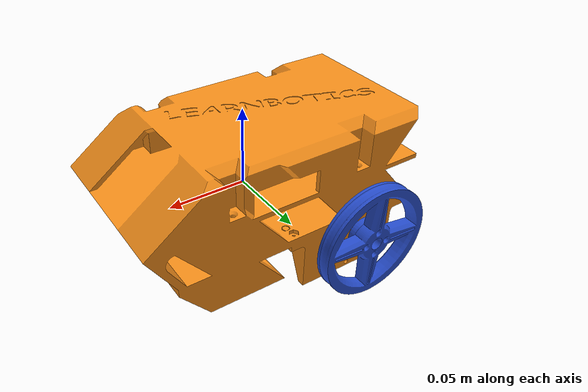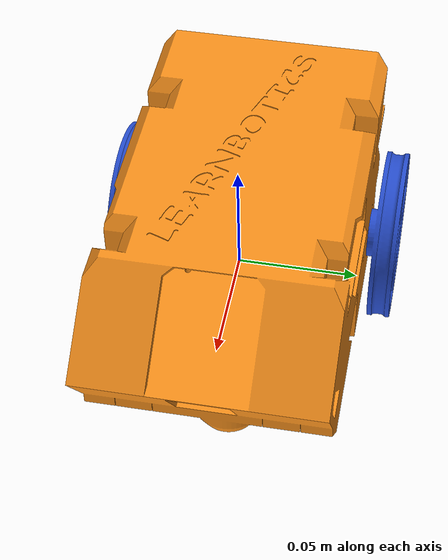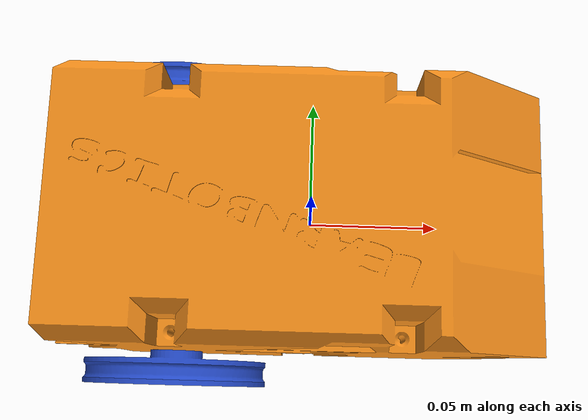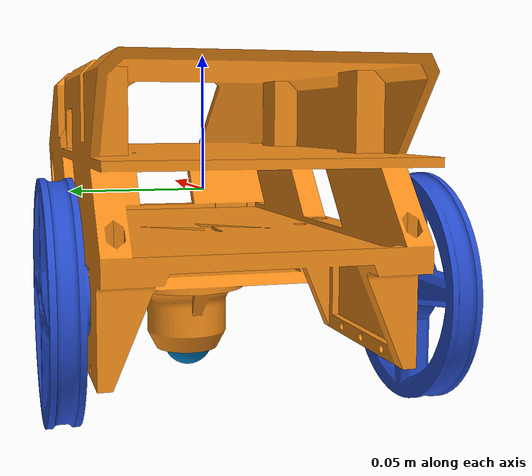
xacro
<?xml version="1.0" ?>
<robot name="robot_perfect_2" xmlns:xacro="http://ros.org/wiki/xacro">

  <!-- include the xacro files-->
  <xacro:include filename="$(find learnbotics)/gazebo/robot.gazebo"/>

  <link name="base_link">

  </link>

  <link name="capa">
    <inertial>
      <mass value="0.327"/>
      <origin rpy="0  0  0" xyz="0  0  0"/>
      <inertia ixx="0.001029" ixy="0" ixz="0" iyy="0.0006633" iyz="0" izz="0.001202"/>
    </inertial>
    <collision name="robot_perfect_2__collision">
      <origin rpy="0      0      1.5707" xyz="0  0  0"/>
      <geometry>
        <mesh filename="package://learnbotics/meshes/capa.stl" scale="1 1 1"/>
      </geometry>
    </collision>
    <visual name="robot_perfect_2__visual">
      <origin rpy="0      0      1.5707" xyz="0  0  0"/>
      <geometry>
        <mesh filename="package://learnbotics/meshes/capa.stl" scale="1 1 1"/>
      </geometry>
    </visual>
  </link>
  <joint name="base_to_capa" type="fixed">
    <parent link="base_link"/>
    <child link="capa"/>
    <origin rpy="0 0 0" xyz="0.0 0.0 0.0"/>
  </joint>

  <link name="wheel_right">
    <inertial>
      <mass value="0.027"/>
      <origin rpy="0  0  0" xyz="0  0  0"/>
      <inertia ixx="1.905e-05" ixy="0" ixz="0" iyy="1.905e-05" iyz="0" izz="2.138e-05"/>
    </inertial>
    <collision name="robot_perfect_2__collision">
      <origin rpy="0  0  0" xyz="0  0  0"/>
      <geometry>
        <mesh filename="package://learnbotics/meshes/wheel.stl" scale="1 1 1"/>
      </geometry>
    </collision>
    <visual name="robot_perfect_2__visual">
      <origin rpy="0  0  0" xyz="0  0  0"/>
      <geometry>
        <mesh filename="package://learnbotics/meshes/wheel.stl" scale="1 1 1"/>
      </geometry>
    </visual>
  </link>
  <joint name="capa_JOINT_wheel_right" type="continuous">
    <parent link="capa"/>
    <child link="wheel_right"/>
    <origin rpy="1.5707  0      0" xyz="-0.05502 -0.05936 -0.02971"/>
    <axis xyz="0   0  1"/>
    <limit effort="-1.0" lower="-1.79769e+308" upper="1.79769e+308" velocity="-1.0"/>
  </joint>

  <link name="wheel_left">
    <inertial>
      <mass value="0.027"/>
      <origin rpy="0  0  0" xyz="0  0  0"/>
      <inertia ixx="1.905e-05" ixy="0" ixz="0" iyy="1.905e-05" iyz="0" izz="2.138e-05"/>
    </inertial>
    <collision name="robot_perfect_2__collision">
      <origin rpy="3.14159000e+00   1.59000000e-03   3.14159000e+00" xyz="0  0  0"/>
      <geometry>
        <mesh filename="package://learnbotics/meshes/wheel.stl" scale="1 1 1"/>
      </geometry>
    </collision>
    <visual name="robot_perfect_2__visual">
      <origin rpy="3.14159000e+00   1.59000000e-03   3.14159000e+00" xyz="0  0  0"/>
      <geometry>
        <mesh filename="package://learnbotics/meshes/wheel.stl" scale="1 1 1"/>
      </geometry>
    </visual>
  </link>
  <joint name="capa_JOINT_wheel_left" type="continuous">
    <parent link="capa"/>
    <child link="wheel_left"/>
    <origin rpy="1.5707  0      0" xyz="-0.05559  0.05972 -0.02971"/>
    <axis xyz="0 0 1"/>
    <limit effort="-1.0" lower="-1.79769e+308" upper="1.79769e+308" velocity="-1.0"/>
  </joint>

  <link name="ball">
    <inertial>
      <mass value="0.004"/>
      <origin rpy="0  0  0" xyz="0  0  0"/>
      <inertia ixx="1.7e-07" ixy="0" ixz="0" iyy="1.7e-07" iyz="0" izz="1.7e-07"/>
    </inertial>
    <collision name="robot_perfect_2__collision">
      <origin rpy="0  0  0" xyz="0  0  0"/>
      <geometry>
        <mesh filename="package://learnbotics/meshes/bol.stl" scale="1 1 1"/>
      </geometry>
    </collision>
    <visual name="robot_perfect_2__visual">
      <origin rpy="0  0  0" xyz="0  0  0"/>
      <geometry>
        <mesh filename="package://learnbotics/meshes/bol.stl" scale="1 1 1"/>
      </geometry>
    </visual>
  </link>
  <joint name="capa_JOINT_ball" type="continuous">
    <parent link="capa"/>
    <child link="ball"/>
    <origin rpy="0  0  0" xyz="0.02828  0      -0.065"/>
    <axis xyz="1  1  1"/>
    <limit effort="0" lower="0" upper="0" velocity="0"/>
  </joint>
</robot>
